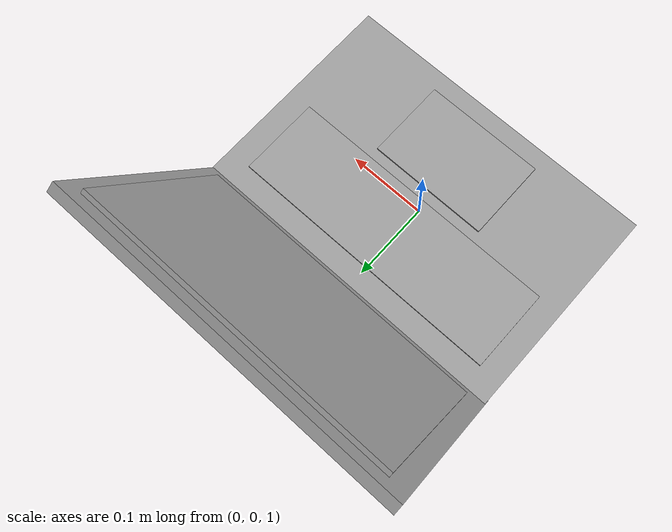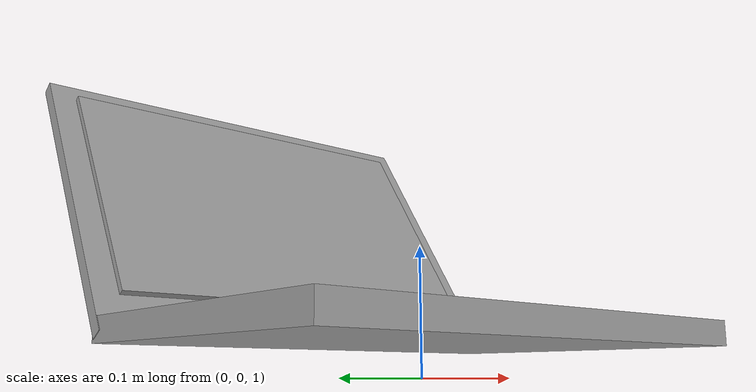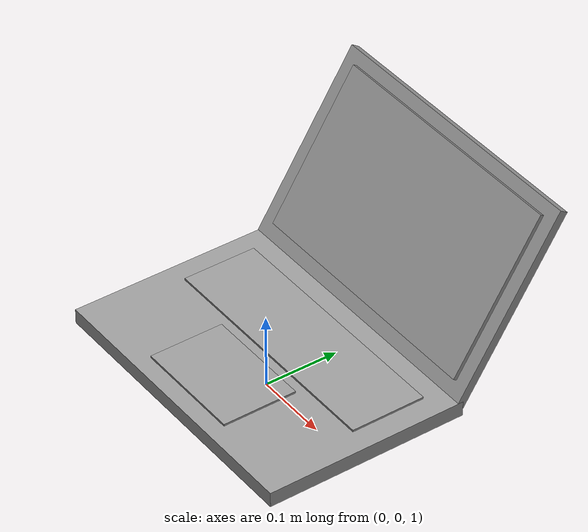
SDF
<?xml version='1.0'?>
<sdf version='1.7'>
  <model name='my_pc'>
    <link name='link'>
      <inertial>
        <mass>1</mass>
        <inertia>
          <ixx>0.166667</ixx>
          <ixy>0</ixy>
          <ixz>0</ixz>
          <iyy>0.166667</iyy>
          <iyz>0</iyz>
          <izz>0.166667</izz>
        </inertia>
        <pose>0 0 0 0 -0 0</pose>
      </inertial>
      <self_collide>0</self_collide>
      <enable_wind>0</enable_wind>
      <kinematic>0</kinematic>
      <pose>0 0 0 0 -0 0</pose>
      <gravity>0</gravity>
      <visual name='visual'>
        <geometry>
          <box>
            <size>0.4 0.27 0.02</size>
          </box>
        </geometry>
        <material>
          <script>
            <name>Gazebo/Grey</name>
            <uri>file://media/materials/scripts/gazebo.material</uri>
          </script>
          <shader type='pixel'>
            <normal_map>__default__</normal_map>
          </shader>
          <ambient>0.6 0.6 0.6 0</ambient>
          <diffuse>0.6 0.6 0.6 1</diffuse>
          <specular>0.01 0.01 0.01 1</specular>
          <emissive>0 0 0 1</emissive>
        </material>
        <pose>0 0 1.035 0 -0 0</pose>
        <transparency>0</transparency>
        <cast_shadows>1</cast_shadows>
      </visual>
      <collision name='collision'>
        <laser_retro>0</laser_retro>
        <max_contacts>10</max_contacts>
        <pose>0 0 1.035 0 -0 0</pose>
        <geometry>
          <box>
            <size>0.4 0.27 0.02</size>
          </box>
        </geometry>
        <surface>
          <friction>
            <ode>
              <mu>1</mu>
              <mu2>1</mu2>
              <fdir1>0 0 0</fdir1>
              <slip1>0</slip1>
              <slip2>0</slip2>
            </ode>
            <torsional>
              <coefficient>1</coefficient>
              <patch_radius>0</patch_radius>
              <surface_radius>0</surface_radius>
              <use_patch_radius>1</use_patch_radius>
              <ode>
                <slip>0</slip>
              </ode>
            </torsional>
          </friction>
          <bounce>
            <restitution_coefficient>0</restitution_coefficient>
            <threshold>1e+06</threshold>
          </bounce>
          <contact>
            <collide_without_contact>0</collide_without_contact>
            <collide_without_contact_bitmask>1</collide_without_contact_bitmask>
            <collide_bitmask>1</collide_bitmask>
            <ode>
              <soft_cfm>0</soft_cfm>
              <soft_erp>0.2</soft_erp>
              <kp>1e+13</kp>
              <kd>1</kd>
              <max_vel>0.01</max_vel>
              <min_depth>0</min_depth>
            </ode>
            <bullet>
              <split_impulse>1</split_impulse>
              <split_impulse_penetration_threshold>-0.01</split_impulse_penetration_threshold>
              <soft_cfm>0</soft_cfm>
              <soft_erp>0.2</soft_erp>
              <kp>1e+13</kp>
              <kd>1</kd>
            </bullet>
          </contact>
        </surface>
      </collision>
    </link>
    <link name='link_clone'>
      <inertial>
        <mass>1</mass>
        <inertia>
          <ixx>0.166667</ixx>
          <ixy>0</ixy>
          <ixz>0</ixz>
          <iyy>0.166667</iyy>
          <iyz>0</iyz>
          <izz>0.166667</izz>
        </inertia>
        <pose>0 0 0 0 -0 0</pose>
      </inertial>
      <self_collide>0</self_collide>
      <enable_wind>0</enable_wind>
      <kinematic>0</kinematic>
      <pose>-0.00057 0.199611 0.109573 0 -0 0</pose>
      <gravity>1</gravity>
      <visual name='visual'>
        <geometry>
          <box>
            <size>0.4 0.27 0.012</size>
          </box>
        </geometry>
        <material>
          <script>
            <name>Gazebo/Grey</name>
            <uri>file://media/materials/scripts/gazebo.material</uri>
          </script>
          <shader type='pixel'>
            <normal_map>__default__</normal_map>
          </shader>
          <ambient>0.6 0.6 0.6 0</ambient>
          <diffuse>0.6 0.6 0.6 1</diffuse>
          <specular>0.01 0.01 0.01 1</specular>
          <emissive>0 0 0 1</emissive>
        </material>
        <pose>0 0 1.035 1 -0 0</pose>
        <transparency>0</transparency>
        <cast_shadows>1</cast_shadows>
      </visual>
      <collision name='collision'>
        <laser_retro>0</laser_retro>
        <max_contacts>10</max_contacts>
        <pose>0 0 1.035 1 -0 0</pose>
        <geometry>
          <box>
            <size>0.4 0.27 0.012</size>
          </box>
        </geometry>
        <surface>
          <friction>
            <ode>
              <mu>1</mu>
              <mu2>1</mu2>
              <fdir1>0 0 0</fdir1>
              <slip1>0</slip1>
              <slip2>0</slip2>
            </ode>
            <torsional>
              <coefficient>1</coefficient>
              <patch_radius>0</patch_radius>
              <surface_radius>0</surface_radius>
              <use_patch_radius>1</use_patch_radius>
              <ode>
                <slip>0</slip>
              </ode>
            </torsional>
          </friction>
          <bounce>
            <restitution_coefficient>0</restitution_coefficient>
            <threshold>1e+06</threshold>
          </bounce>
          <contact>
            <collide_without_contact>0</collide_without_contact>
            <collide_without_contact_bitmask>1</collide_without_contact_bitmask>
            <collide_bitmask>1</collide_bitmask>
            <ode>
              <soft_cfm>0</soft_cfm>
              <soft_erp>0.2</soft_erp>
              <kp>1e+13</kp>
              <kd>1</kd>
              <max_vel>0.01</max_vel>
              <min_depth>0</min_depth>
            </ode>
            <bullet>
              <split_impulse>1</split_impulse>
              <split_impulse_penetration_threshold>-0.01</split_impulse_penetration_threshold>
              <soft_cfm>0</soft_cfm>
              <soft_erp>0.2</soft_erp>
              <kp>1e+13</kp>
              <kd>1</kd>
            </bullet>
          </contact>
        </surface>
      </collision>
    </link>
    <link name='link_clone_0'>
      <inertial>
        <mass>1</mass>
        <inertia>
          <ixx>0.166667</ixx>
          <ixy>0</ixy>
          <ixz>0</ixz>
          <iyy>0.166667</iyy>
          <iyz>0</iyz>
          <izz>0.166667</izz>
        </inertia>
        <pose>0 0 0 0 -0 0</pose>
      </inertial>
      <self_collide>0</self_collide>
      <enable_wind>0</enable_wind>
      <kinematic>0</kinematic>
      <pose>0.000615 -0.061904 0.007701 0 -0 0</pose>
      <gravity>1</gravity>
      <visual name='visual'>
        <geometry>
          <box>
            <size>0.15 0.1 0.01</size>
          </box>
        </geometry>
        <material>
          <script>
            <name>Gazebo/Grey</name>
            <uri>file://media/materials/scripts/gazebo.material</uri>
          </script>
          <shader type='pixel'>
            <normal_map>__default__</normal_map>
          </shader>
          <ambient>0.8 0.8 0.8 0</ambient>
          <diffuse>0.8 0.8 0.8 1</diffuse>
          <specular>0.01 0.01 0.01 1</specular>
          <emissive>0 0 0 1</emissive>
        </material>
        <pose>0 0 1.035 0 -0 0</pose>
        <transparency>0</transparency>
        <cast_shadows>1</cast_shadows>
      </visual>
      <collision name='collision'>
        <laser_retro>0</laser_retro>
        <max_contacts>10</max_contacts>
        <pose>0 0 1.035 0 -0 0</pose>
        <geometry>
          <box>
            <size>0.15 0.1 0.01</size>
          </box>
        </geometry>
        <surface>
          <friction>
            <ode>
              <mu>1</mu>
              <mu2>1</mu2>
              <fdir1>0 0 0</fdir1>
              <slip1>0</slip1>
              <slip2>0</slip2>
            </ode>
            <torsional>
              <coefficient>1</coefficient>
              <patch_radius>0</patch_radius>
              <surface_radius>0</surface_radius>
              <use_patch_radius>1</use_patch_radius>
              <ode>
                <slip>0</slip>
              </ode>
            </torsional>
          </friction>
          <bounce>
            <restitution_coefficient>0</restitution_coefficient>
            <threshold>1e+06</threshold>
          </bounce>
          <contact>
            <collide_without_contact>0</collide_without_contact>
            <collide_without_contact_bitmask>1</collide_without_contact_bitmask>
            <collide_bitmask>1</collide_bitmask>
            <ode>
              <soft_cfm>0</soft_cfm>
              <soft_erp>0.2</soft_erp>
              <kp>1e+13</kp>
              <kd>1</kd>
              <max_vel>0.01</max_vel>
              <min_depth>0</min_depth>
            </ode>
            <bullet>
              <split_impulse>1</split_impulse>
              <split_impulse_penetration_threshold>-0.01</split_impulse_penetration_threshold>
              <soft_cfm>0</soft_cfm>
              <soft_erp>0.2</soft_erp>
              <kp>1e+13</kp>
              <kd>1</kd>
            </bullet>
          </contact>
        </surface>
      </collision>
    </link>
    <link name='link_clone_0_clone'>
      <inertial>
        <mass>1</mass>
        <inertia>
          <ixx>0.166667</ixx>
          <ixy>0</ixy>
          <ixz>0</ixz>
          <iyy>0.166667</iyy>
          <iyz>0</iyz>
          <izz>0.166667</izz>
        </inertia>
        <pose>0 0 0 0 -0 0</pose>
      </inertial>
      <self_collide>0</self_collide>
      <enable_wind>0</enable_wind>
      <kinematic>0</kinematic>
      <pose>-0.000829 0.051344 0.007701 0 -0 0</pose>
      <gravity>1</gravity>
      <visual name='visual'>
        <geometry>
          <box>
            <size>0.34 0.1 0.01</size>
          </box>
        </geometry>
        <material>
          <script>
            <name>Gazebo/Grey</name>
            <uri>file://media/materials/scripts/gazebo.material</uri>
          </script>
          <shader type='pixel'>
            <normal_map>__default__</normal_map>
          </shader>
          <ambient>0.8 0.8 0.8 0</ambient>
          <diffuse>0.8 0.8 0.8 1</diffuse>
          <specular>0.01 0.01 0.01 1</specular>
          <emissive>0 0 0 1</emissive>
        </material>
        <pose>0 0 1.035 0 -0 0</pose>
        <transparency>0</transparency>
        <cast_shadows>1</cast_shadows>
      </visual>
      <collision name='collision'>
        <laser_retro>0</laser_retro>
        <max_contacts>10</max_contacts>
        <pose>0 0 1.035 0 -0 0</pose>
        <geometry>
          <box>
            <size>0.34 0.1 0.01</size>
          </box>
        </geometry>
        <surface>
          <friction>
            <ode>
              <mu>1</mu>
              <mu2>1</mu2>
              <fdir1>0 0 0</fdir1>
              <slip1>0</slip1>
              <slip2>0</slip2>
            </ode>
            <torsional>
              <coefficient>1</coefficient>
              <patch_radius>0</patch_radius>
              <surface_radius>0</surface_radius>
              <use_patch_radius>1</use_patch_radius>
              <ode>
                <slip>0</slip>
              </ode>
            </torsional>
          </friction>
          <bounce>
            <restitution_coefficient>0</restitution_coefficient>
            <threshold>1e+06</threshold>
          </bounce>
          <contact>
            <collide_without_contact>0</collide_without_contact>
            <collide_without_contact_bitmask>1</collide_without_contact_bitmask>
            <collide_bitmask>1</collide_bitmask>
            <ode>
              <soft_cfm>0</soft_cfm>
              <soft_erp>0.2</soft_erp>
              <kp>1e+13</kp>
              <kd>1</kd>
              <max_vel>0.01</max_vel>
              <min_depth>0</min_depth>
            </ode>
            <bullet>
              <split_impulse>1</split_impulse>
              <split_impulse_penetration_threshold>-0.01</split_impulse_penetration_threshold>
              <soft_cfm>0</soft_cfm>
              <soft_erp>0.2</soft_erp>
              <kp>1e+13</kp>
              <kd>1</kd>
            </bullet>
          </contact>
        </surface>
      </collision>
    </link>
    <link name='link_clone_clone'>
      <inertial>
        <mass>1</mass>
        <inertia>
          <ixx>0.166667</ixx>
          <ixy>0</ixy>
          <ixz>0</ixz>
          <iyy>0.166667</iyy>
          <iyz>0</iyz>
          <izz>0.166667</izz>
        </inertia>
        <pose>0 0 0 0 -0 0</pose>
      </inertial>
      <self_collide>0</self_collide>
      <enable_wind>0</enable_wind>
      <kinematic>0</kinematic>
      <pose>0.000975 0.199579 0.119418 0 -0 0</pose>
      <gravity>1</gravity>
      <visual name='visual'>
        <geometry>
          <box>
            <size>0.36 0.22 0.012</size>
          </box>
        </geometry>
        <material>
          <script>
            <name>Gazebo/Grey</name>
            <uri>file://media/materials/scripts/gazebo.material</uri>
          </script>
          <shader type='pixel'>
            <normal_map>__default__</normal_map>
          </shader>
          <ambient>0.1 0.1 0.1 1</ambient>
          <diffuse>0.1 0.1 0.1 1</diffuse>
          <specular>0.01 0.01 0.01 1</specular>
          <emissive>0 0 0 1</emissive>
        </material>
        <pose>0 0 1.035 1 -0 0</pose>
        <transparency>0</transparency>
        <cast_shadows>1</cast_shadows>
      </visual>
      <collision name='collision'>
        <laser_retro>0</laser_retro>
        <max_contacts>10</max_contacts>
        <pose>0 0 1.035 1 -0 0</pose>
        <geometry>
          <box>
            <size>0.4 0.27 0.012</size>
          </box>
        </geometry>
        <surface>
          <friction>
            <ode>
              <mu>1</mu>
              <mu2>1</mu2>
              <fdir1>0 0 0</fdir1>
              <slip1>0</slip1>
              <slip2>0</slip2>
            </ode>
            <torsional>
              <coefficient>1</coefficient>
              <patch_radius>0</patch_radius>
              <surface_radius>0</surface_radius>
              <use_patch_radius>1</use_patch_radius>
              <ode>
                <slip>0</slip>
              </ode>
            </torsional>
          </friction>
          <bounce>
            <restitution_coefficient>0</restitution_coefficient>
            <threshold>1e+06</threshold>
          </bounce>
          <contact>
            <collide_without_contact>0</collide_without_contact>
            <collide_without_contact_bitmask>1</collide_without_contact_bitmask>
            <collide_bitmask>1</collide_bitmask>
            <ode>
              <soft_cfm>0</soft_cfm>
              <soft_erp>0.2</soft_erp>
              <kp>1e+13</kp>
              <kd>1</kd>
              <max_vel>0.01</max_vel>
              <min_depth>0</min_depth>
            </ode>
            <bullet>
              <split_impulse>1</split_impulse>
              <split_impulse_penetration_threshold>-0.01</split_impulse_penetration_threshold>
              <soft_cfm>0</soft_cfm>
              <soft_erp>0.2</soft_erp>
              <kp>1e+13</kp>
              <kd>1</kd>
            </bullet>
          </contact>
        </surface>
      </collision>
    </link>
    <static>1</static>
    <allow_auto_disable>1</allow_auto_disable>
  </model>
</sdf>
